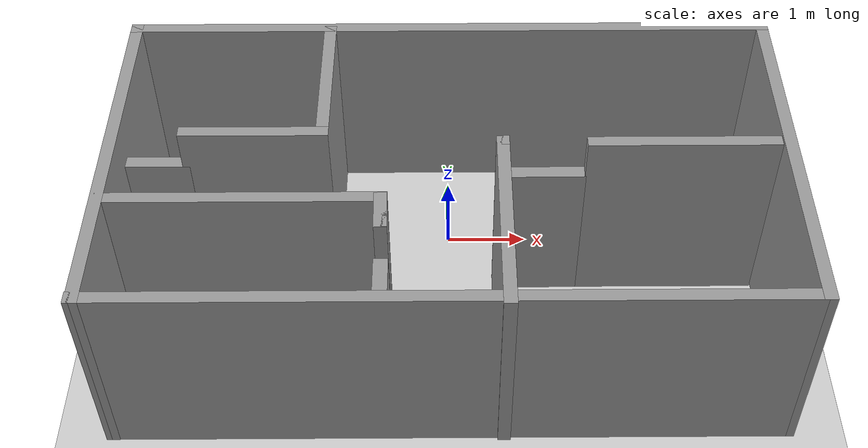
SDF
<sdf version="1.7">
 <world name="default">
  <light name="sun" type="directional">
   <pose>0 0 10 0 -0 0</pose>
   <diffuse>0.8 0.8 0.8 1</diffuse>
   <specular>0.2 0.2 0.2 1</specular>
   <attenuation>
    <range>1000</range>
    <constant>0.9</constant>
    <linear>0.01</linear>
    <quadratic>0.001</quadratic>
   </attenuation>
   <direction>-0.5 0.1 -0.9</direction>
   <spot><inner_angle>0</inner_angle><outer_angle>0</outer_angle><falloff>0</falloff></spot>
  </light>
  <model name="ground_plane">
   <static>1</static>
   <link name="link">
    <collision name="collision">
     <geometry><plane><normal>0 0 1</normal><size>100 100</size></plane></geometry>
     <surface><friction><ode><mu>100</mu><mu2>50</mu2></ode></friction></surface>
    </collision>
    <visual name="visual">
     <cast_shadows>0</cast_shadows>
     <geometry><plane><normal>0 0 1</normal><size>100 100</size></plane></geometry>
     <material>
      <script><uri>file://media/materials/scripts/gazebo.material</uri><name>Gazebo/Grey</name></script>
     </material>
    </visual>
   </link>
  </model>
  <gravity>0 0 -9.8</gravity>
  <magnetic_field>6e-06 2.3e-05 -4.2e-05</magnetic_field>
  <atmosphere type="adiabatic"/>
  <physics type="ode">
   <max_step_size>0.001</max_step_size>
   <real_time_factor>1</real_time_factor>
   <real_time_update_rate>1000</real_time_update_rate>
  </physics>
  <scene><ambient>0.4 0.4 0.4 1</ambient><background>0.7 0.7 0.7 1</background><shadows>1</shadows></scene>
  <audio><device>default</device></audio>
  <spherical_coordinates>
   <surface_model>EARTH_WGS84</surface_model>
   <latitude_deg>0</latitude_deg>
   <longitude_deg>0</longitude_deg>
   <elevation>0</elevation>
   <heading_deg>0</heading_deg>
  </spherical_coordinates>
  <model name="room">
   <pose>0.016263 0.050472 0 0 -0 0</pose>
   <link name="Door_0">
    <collision name="Door_0_Collision">
     <geometry><box><size>0.9 0.17 2</size></box></geometry>
     <pose>0 0 1 0 -0 0</pose>
    </collision>
    <visual name="Door_0_Visual">
     <pose>0 0 1 0 -0 0</pose>
     <geometry><box><size>0.9 0.17 2</size></box></geometry>
     <material>
      <script><uri>file://media/materials/scripts/gazebo.material</uri><name>Gazebo/Grey</name></script>
     </material>
    </visual>
    <pose>-3.52508 -0.5975 0 0 -0 0</pose>
   </link>
   <link name="Door_4">
    <collision name="Door_4_Collision">
     <geometry><box><size>0.9 0.17 2</size></box></geometry>
     <pose>0 0 1 0 -0 0</pose>
    </collision>
    <visual name="Door_4_Visual">
     <pose>0 0 1 0 -0 0</pose>
     <geometry><box><size>0.9 0.17 2</size></box></geometry>
     <material>
      <script><uri>file://media/materials/scripts/gazebo.material</uri><name>Gazebo/Grey</name></script>
     </material>
    </visual>
    <pose>-0.777259 -2.59266 0 0 0 -1.57064</pose>
   </link>
   <link name="Door_5">
    <collision name="Door_5_Collision">
     <geometry><box><size>0.9 0.17 2</size></box></geometry>
     <pose>0 0 1 0 -0 0</pose>
    </collision>
    <visual name="Door_5_Visual">
     <pose>0 0 1 0 -0 0</pose>
     <geometry><box><size>0.9 0.17 2</size></box></geometry>
     <material>
      <script><uri>file://media/materials/scripts/gazebo.material</uri><name>Gazebo/Grey</name></script>
     </material>
    </visual>
    <pose>1.15274 -0.79266 0 0 -0 0.006358</pose>
   </link>
   <link name="Wall_0">
    <collision name="Wall_0_Collision">
     <geometry><box><size>4.5401 0.15 2.5</size></box></geometry>
     <pose>0 0 1.25 0 -0 0</pose>
    </collision>
    <visual name="Wall_0_Visual">
     <pose>0 0 1.25 0 -0 0</pose>
     <geometry><box><size>4.5401 0.15 2.5</size></box></geometry>
     <material>
      <script><uri>file://media/materials/scripts/gazebo.material</uri><name>Gazebo/Grey</name></script>
      <ambient>1 1 1 1</ambient>
     </material>
     <meta><layer>0</layer></meta>
    </visual>
    <pose>-3.92008 -0.9025 0 0 -0 -1.57307</pose>
   </link>
   <link name="Wall_1">
    <collision name="Wall_1_Collision">
     <geometry><box><size>8 0.15 2.5</size></box></geometry>
     <pose>0 0 1.25 0 -0 0</pose>
    </collision>
    <visual name="Wall_1_Visual">
     <pose>0 0 1.25 0 -0 0</pose>
     <geometry><box><size>8 0.15 2.5</size></box></geometry>
     <material>
      <script><uri>file://media/materials/scripts/gazebo.material</uri><name>Gazebo/Grey</name></script>
      <ambient>1 1 1 1</ambient>
     </material>
     <meta><layer>0</layer></meta>
    </visual>
    <pose>-0.010085 -3.0975 0 0 -0 0</pose>
   </link>
   <link name="Wall_10">
    <collision name="Wall_10_Collision">
     <geometry><box><size>2.25 0.15 2.5</size></box></geometry>
     <pose>0 0 1.25 0 -0 0</pose>
    </collision>
    <visual name="Wall_10_Visual">
     <pose>0 0 1.25 0 -0 0</pose>
     <geometry><box><size>2.25 0.15 2.5</size></box></geometry>
     <material>
      <script><uri>file://media/materials/scripts/gazebo.material</uri><name>Gazebo/Grey</name></script>
      <ambient>1 1 1 1</ambient>
     </material>
     <meta><layer>0</layer></meta>
    </visual>
    <pose>2.71491 -0.7975 0 0 -0 0</pose>
   </link>
   <link name="Wall_14">
    <collision name="Wall_14_Collision">
     <geometry><box><size>0.15 0.15 2.5</size></box></geometry>
     <pose>0 0 1.25 0 -0 0</pose>
    </collision>
    <visual name="Wall_14_Visual">
     <pose>0 0 1.25 0 -0 0</pose>
     <geometry><box><size>0.15 0.15 2.5</size></box></geometry>
     <material>
      <script><uri>file://media/materials/scripts/gazebo.material</uri><name>Gazebo/Grey</name></script>
      <ambient>1 1 1 1</ambient>
     </material>
     <meta><layer>0</layer></meta>
    </visual>
    <pose>0.614915 -0.7675 0 0 -0 0</pose>
   </link>
   <link name="Wall_19">
    <collision name="Wall_19_Collision">
     <geometry><box><size>2.5 0.15 2.5</size></box></geometry>
     <pose>0 0 1.25 0 -0 0</pose>
    </collision>
    <visual name="Wall_19_Visual">
     <pose>0 0 1.25 0 -0 0</pose>
     <geometry><box><size>2.5 0.15 2.5</size></box></geometry>
     <material>
      <script><uri>file://media/materials/scripts/gazebo.material</uri><name>Gazebo/Grey</name></script>
      <ambient>1 1 1 1</ambient>
     </material>
     <meta><layer>0</layer></meta>
    </visual>
    <pose>0.614915 -1.9525 0 0 -0 1.5708</pose>
   </link>
   <link name="Wall_2">
    <collision name="Wall_2_Collision">
     <geometry><box><size>4.5401 0.15 2.5</size></box></geometry>
     <pose>0 0 1.25 0 -0 0</pose>
    </collision>
    <visual name="Wall_2_Visual">
     <pose>0 0 1.25 0 -0 0</pose>
     <geometry><box><size>4.5401 0.15 2.5</size></box></geometry>
     <material>
      <script><uri>file://media/materials/scripts/gazebo.material</uri><name>Gazebo/Grey</name></script>
      <ambient>1 1 1 1</ambient>
     </material>
     <meta><layer>0</layer></meta>
    </visual>
    <pose>3.92991 -0.9025 0 0 -0 1.56852</pose>
   </link>
   <link name="Wall_22">
    <collision name="Wall_22_Collision">
     <geometry><box><size>3.25002 0.15 2.5</size></box></geometry>
     <pose>0 0 1.25 0 -0 0</pose>
    </collision>
    <visual name="Wall_22_Visual">
     <pose>0 0 1.25 0 -0 0</pose>
     <geometry><box><size>3.25002 0.15 2.5</size></box></geometry>
     <material>
      <script><uri>file://media/materials/scripts/gazebo.material</uri><name>Gazebo/Grey</name></script>
      <ambient>1 1 1 1</ambient>
     </material>
     <meta><layer>0</layer></meta>
    </visual>
    <pose>-2.32509 -1.6675 0 0 -0 0</pose>
   </link>
   <link name="Wall_29">
    <collision name="Wall_29_Collision">
     <geometry><box><size>0.525242 0.15 2.5</size></box></geometry>
     <pose>0 0 1.25 0 -0 0</pose>
    </collision>
    <visual name="Wall_29_Visual">
     <pose>0 0 1.25 0 -0 0</pose>
     <geometry><box><size>0.525242 0.15 2.5</size></box></geometry>
     <material>
      <script><uri>file://media/materials/scripts/gazebo.material</uri><name>Gazebo/Grey</name></script>
      <ambient>1 1 1 1</ambient>
     </material>
     <meta><layer>0</layer></meta>
    </visual>
    <pose>-0.771172 -1.85508 0 0 -0 1.59165</pose>
   </link>
   <link name="Wall_3">
    <collision name="Wall_3_Collision">
     <geometry><box><size>8 0.15 2.5</size></box></geometry>
     <pose>0 0 1.25 0 -0 0</pose>
    </collision>
    <visual name="Wall_3_Visual">
     <pose>0 0 1.25 0 -0 0</pose>
     <geometry><box><size>8 0.15 2.5</size></box></geometry>
     <material>
      <script><uri>file://media/materials/scripts/gazebo.material</uri><name>Gazebo/Grey</name></script>
      <ambient>1 1 1 1</ambient>
     </material>
     <meta><layer>0</layer></meta>
    </visual>
    <pose>0.009915 1.2925 0 0 -0 3.14159</pose>
   </link>
   <link name="Wall_30">
    <collision name="Wall_30_Collision">
     <geometry><box><size>0.525242 0.15 2.5</size></box></geometry>
     <pose>0 0 1.25 0 -0 0</pose>
    </collision>
    <visual name="Wall_30_Visual">
     <pose>0 0 1.25 0 -0 0</pose>
     <geometry><box><size>0.525242 0.15 2.5</size></box></geometry>
     <material>
      <script><uri>file://media/materials/scripts/gazebo.material</uri><name>Gazebo/Grey</name></script>
      <ambient>1 1 1 1</ambient>
     </material>
     <meta><layer>0</layer></meta>
    </visual>
    <pose>-0.771172 -1.86508 0 0 -0 -1.54994</pose>
   </link>
   <link name="Wall_5">
    <collision name="Wall_5_Collision">
     <geometry><box><size>2 0.15 2.5</size></box></geometry>
     <pose>0 0 1.25 0 -0 0</pose>
    </collision>
    <visual name="Wall_5_Visual">
     <pose>0 0 1.25 0 -0 0</pose>
     <geometry><box><size>2 0.15 2.5</size></box></geometry>
     <material>
      <script><uri>file://media/materials/scripts/gazebo.material</uri><name>Gazebo/Grey</name></script>
      <ambient>1 1 1 1</ambient>
     </material>
     <meta><layer>0</layer></meta>
    </visual>
    <pose>-1.48508 0.3175 0 0 -0 -1.5708</pose>
   </link>
   <link name="Wall_8">
    <collision name="Wall_8_Collision">
     <geometry><box><size>1.75 0.15 2.5</size></box></geometry>
     <pose>0 0 1.25 0 -0 0</pose>
    </collision>
    <visual name="Wall_8_Visual">
     <pose>0 0 1.25 0 -0 0</pose>
     <geometry><box><size>1.75 0.15 2.5</size></box></geometry>
     <material>
      <script><uri>file://media/materials/scripts/gazebo.material</uri><name>Gazebo/Grey</name></script>
      <ambient>1 1 1 1</ambient>
     </material>
     <meta><layer>0</layer></meta>
    </visual>
    <pose>-2.28509 -0.6075 0 0 -0 3.14159</pose>
   </link>
   <static>1</static>
  </model>
 </world>
</sdf>
